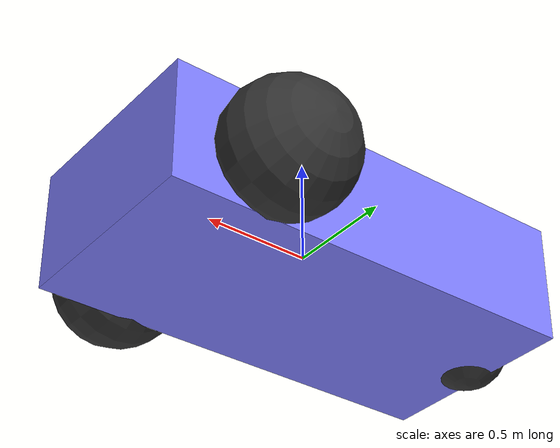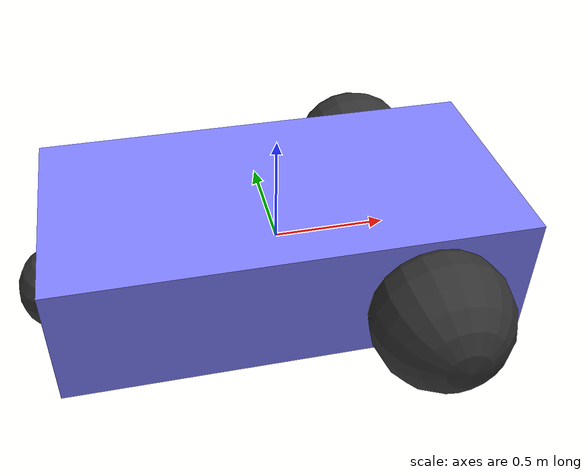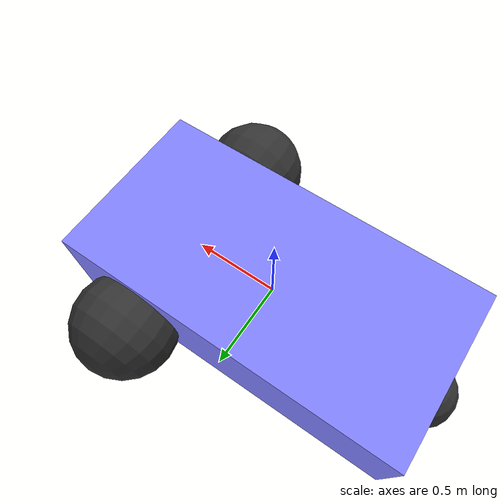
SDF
<?xml version="1.0" ?>
<sdf version="1.8">
    <model name='movus'>
      <link name='chassis'>
        <pose>0 -0 0 0 -0 3.14</pose>
        <inertial>
          <mass>1.14395</mass>
          <inertia>
            <ixx>0.126164</ixx>
            <ixy>0</ixy>
            <ixz>0</ixz>
            <iyy>0.416519</iyy>
            <iyz>0</iyz>
            <izz>0.481014</izz>
          </inertia>
        </inertial>
        <visual name='visual_chassis'>
          <geometry>
            <box>
              <size>2.01142 1 0.568726</size>
            </box>
          </geometry>
          <material>
            <ambient>0.5 0.5 1.0 1</ambient>
            <diffuse>0.5 0.5 1.0 1</diffuse>
            <specular>0.0 0.0 1.0 1</specular>
          </material>
        </visual>
        <collision name='collision_chassis'>
          <geometry>
            <box>
              <size>2.01142 1 0.568726</size>
            </box>
          </geometry>
        </collision>
      </link>

      <link name='left_wheel'>
        <pose>0.554283 0.625029 -0.025 -1.5707 0 0</pose>
        <inertial>
          <mass>2</mass>
          <inertia>
            <ixx>0.145833</ixx>
            <ixy>0</ixy>
            <ixz>0</ixz>
            <iyy>0.145833</iyy>
            <iyz>0</iyz>
            <izz>0.125</izz>
          </inertia>
        </inertial>
        <visual name='visual_left_wheel'>
          <geometry>
            <sphere>
              <radius>0.3</radius>
            </sphere>
          </geometry>
          <material>
            <ambient>0.2 0.2 0.2 1</ambient>
            <diffuse>0.2 0.2 0.2 1</diffuse>
            <specular>0.2 0.2 0.2 1</specular>
          </material>
        </visual>
        <collision name='collision_left_wheel'>
          <geometry>
            <sphere>
              <radius>0.3</radius>
            </sphere>
          </geometry>
        </collision>
      </link>

      <link name='right_wheel'>
        <pose>0.554282 -0.625029 -0.025 -1.5707 0 0</pose>
        <inertial>
          <mass>2</mass>
          <inertia>
            <ixx>0.145833</ixx>
            <ixy>0</ixy>
            <ixz>0</ixz>
            <iyy>0.145833</iyy>
            <iyz>0</iyz>
            <izz>0.125</izz>
          </inertia>
        </inertial>
        <visual name='visual_right_wheel'>
          <geometry>
            <sphere>
              <radius>0.3</radius>
            </sphere>
          </geometry>
          <material>
            <ambient>0.2 0.2 0.2 1</ambient>
            <diffuse>0.2 0.2 0.2 1</diffuse>
            <specular>0.2 0.2 0.2 1</specular>
          </material>
        </visual>
        <collision name='collision_right_wheel'>
          <geometry>
            <sphere>
              <radius>0.3</radius>
            </sphere>
          </geometry>
        </collision>
      </link>

      <link name='caster'>
        <pose>-0.957138 -0 -0.125 0 -0 0</pose>
        <inertial>
          <mass>1</mass>
          <inertia>
            <ixx>0.1</ixx>
            <ixy>0</ixy>
            <ixz>0</ixz>
            <iyy>0.1</iyy>
            <iyz>0</iyz>
            <izz>0.1</izz>
          </inertia>
        </inertial>
        <visual name='visual_caster'>
          <geometry>
            <sphere>
              <radius>0.2</radius>
            </sphere>
          </geometry>
          <material>
            <ambient>0.2 0.2 0.2 1</ambient>
            <diffuse>0.2 0.2 0.2 1</diffuse>
            <specular>0.2 0.2 0.2 1</specular>
          </material>
        </visual>
        <collision name='collision_caster'>
          <geometry>
            <sphere>
              <radius>0.2</radius>
            </sphere>
          </geometry>
        </collision>
      </link>

      <!-- camera_config -->
      <!-- Camera Link -->
      <link name="camera_link">
        <pose>0.5 0 0.7 0 0 0</pose>
        <sensor name="camera_sensor" type="camera">
          <pose>0 0 0 0 0 0</pose>
          <update_rate>30</update_rate>
          <camera>
            <horizontal_fov>1.22</horizontal_fov>
            <image>
              <width>640</width>
              <height>480</height>
              <format>R8G8B8</format>
            </image>
            <clip>
              <near>0.1</near>
              <far>50</far>
            </clip>
            <noise>
              <type>gaussian</type>
              <mean>0.0</mean>
              <stddev>0.01</stddev>
            </noise>
          </camera>
          <visualize>true</visualize>
          <topic>/camera/image</topic>
        </sensor>
      </link>

      <!-- Camera Joint -->
      <joint name="camera_joint" type="fixed">
        <parent>chassis</parent>
        <child>camera_link</child>
      </joint>

      <!-- camera_front_optical_frame -->

      <link name="camera_front_optical_frame">
        <pose relative_to="camera_front">0 0 0 -1.57 0 -1.57</pose>
        <sensor name="camera1" type="rgbd_camera">
          <camera>
            <horizontal_fov>1.047</horizontal_fov>
            <image>
              <width>320</width>
              <height>240</height>
            </image>
            <clip>
              <near>0.1</near>
              <far>100</far>
            </clip>
          </camera>
          <always_on>1</always_on>
          <update_rate>30</update_rate>
          <visualize>true</visualize>
        </sensor>
      </link>

      <joint name="camera_front_optical_joint" type="fixed">
        <child>camera_front_optical_frame</child>
        <parent>camera_front</parent>
      </joint>

      <!-- camera_front -->
      <link name="camera_front">
          <pose relative_to="chassis">0.6 0 -0.05 0 0 0</pose>
      </link>

      <joint name="camera_front_joint" type="fixed">
        <child>camera_front</child>
        <parent>chassis</parent>
      </joint>

      <!-- camera_depth_frame -->

      <link name="camera_depth_frame">
        <pose relative_to="camera_front">0 0 0 0 0 0</pose>
        <sensor name="camera_with_intrinsics_tag" type="depth">
          <pose>0 0 0 0 0 0</pose>
          <update_rate>6</update_rate>
          <always_on>1</always_on>
          <camera>
            <horizontal_fov>1.22</horizontal_fov>
            <image>
              <width>640</width>
              <height>480</height>
              <format>R8G8B8</format>
            </image>
            <clip>
              <near>0.1</near>
              <far>3</far>
            </clip>
            <lens>
              <intrinsics>
                <fx>421.61578369140625</fx>
                <fy>421.61578369140625</fy>
                <cx>422.2854309082031</cx>
                <cy>236.57237243652344</cy>
                <s>0</s>
              </intrinsics>
            </lens>
          </camera>
        </sensor>
      </link>

      <joint name="camera_depth_joint" type="fixed">
        <child>camera_depth_frame</child>
        <parent>chassis</parent>
      </joint>

      <!-- camera config end -->

      <joint name='left_wheel_joint' type='revolute'>
        <parent>chassis</parent>
        <child>left_wheel</child>
        <axis>
          <xyz>0 0 1</xyz>
          <limit>
            <lower>-1.79769e+308</lower>
            <upper>1.79769e+308</upper>
          </limit>
        </axis>
      </joint>

      <joint name='right_wheel_joint' type='revolute'>
        <parent>chassis</parent>
        <child>right_wheel</child>
        <axis>
          <xyz>0 0 1</xyz>
          <limit>
            <lower>-1.79769e+308</lower>
            <upper>1.79769e+308</upper>
          </limit>
        </axis>
      </joint>

      <joint name='caster_wheel' type='ball'>
        <parent>chassis</parent>
        <child>caster</child>
      </joint>

      <plugin
        filename="gz-sim-odometry-publisher-system"
        name="gz::sim::systems::OdometryPublisher">
        <odom_frame>map</odom_frame>
        <robot_base_frame>chassis</robot_base_frame>
        <dimensions>3</dimensions>
        <odom_publish_frequency>5</odom_publish_frequency>
      </plugin>

      <plugin
        filename="gz-sim-diff-drive-system"
        name="gz::sim::systems::DiffDrive">
        <left_joint>left_wheel_joint</left_joint>
        <right_joint>right_wheel_joint</right_joint>
        <wheel_separation>1.25</wheel_separation>
        <wheel_radius>0.3</wheel_radius>
        <odom_publish_frequency>5</odom_publish_frequency>
        <frame_id>map</frame_id>
        <child_frame_id>chassis</child_frame_id>
        <max_linear_acceleration>1</max_linear_acceleration>
        <min_linear_acceleration>-1</min_linear_acceleration>
        <max_angular_acceleration>2</max_angular_acceleration>
        <min_angular_acceleration>-2</min_angular_acceleration>
        <max_linear_velocity>0.5</max_linear_velocity>
        <min_linear_velocity>-0.5</min_linear_velocity>
        <max_angular_velocity>1</max_angular_velocity>
        <min_angular_velocity>-1</min_angular_velocity>
      </plugin>

      <plugin
          filename="gz-sim-pose-publisher-system"
          name="gz::sim::systems::PosePublisher">
          <publish_link_pose>true</publish_link_pose>
          <publish_sensor_pose>true</publish_sensor_pose>
          <publish_visual_pose>true</publish_visual_pose>
          <publish_collision_pose>true</publish_collision_pose>
          <publish_model_pose>true</publish_model_pose>
          <publish_nested_model_pose>true</publish_nested_model_pose>
          <update_frequency>100</update_frequency>
          <static_publisher>true</static_publisher>
      </plugin>

      <plugin
      filename="TfPlugin"
      name="apriltag_dock_plugins::TfPublisherPlugin">

      </plugin>

      <plugin
        filename="gz-sim-sensors-system"
        name="gz::sim::systems::Sensors">
      </plugin>

      <plugin
        filename="gz-sim-user-commands-system"
        name="gz::sim::systems::UserCommands">
      </plugin>

      <plugin
        filename="gz-sim-scene-broadcaster-system"
        name="gz::sim::systems::SceneBroadcaster">
      </plugin>

    </model>
</sdf>
